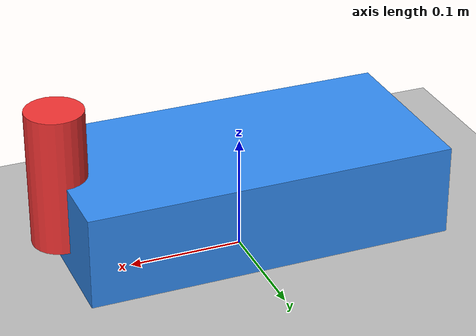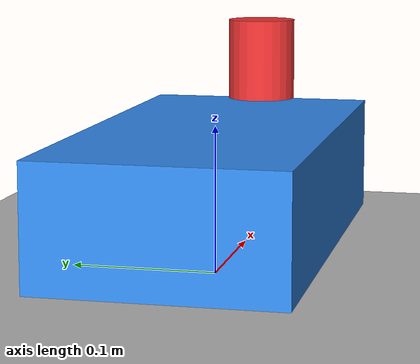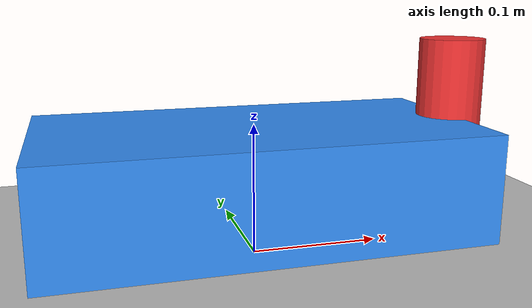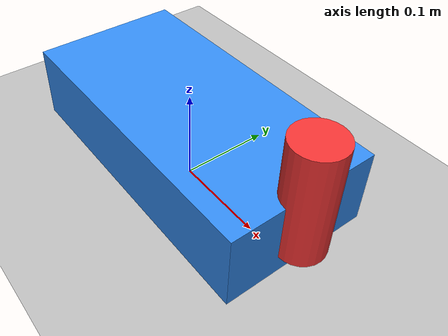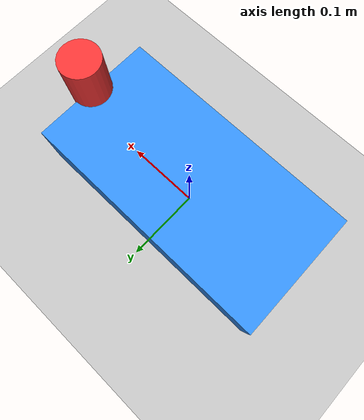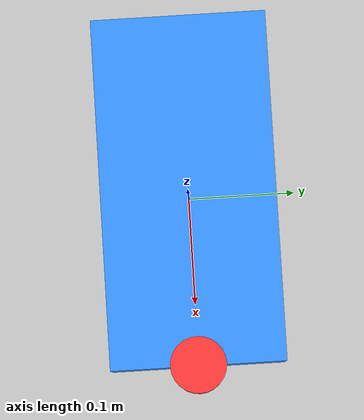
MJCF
<mujoco model="unicycle">
  <option timestep="0.02" integrator="implicit" gravity="0 0 0"/>

  <visual>
    <headlight diffuse="0.8 0.8 0.8" ambient="0.45 0.45 0.45" specular="0.1 0.1 0.1"/>
    <global azimuth="135" elevation="-25" offwidth="1280" offheight="960"/>
  </visual>

  <asset>
    <texture type="skybox" builtin="gradient" rgb1="0.60 0.75 0.92" rgb2="0.90 0.95 1.00"
             width="512" height="3072"/>
    <texture type="2d" name="groundtex" builtin="checker"
             rgb1="0.92 0.92 0.92" rgb2="0.55 0.55 0.55"
             markrgb="0.10 0.10 0.10" mark="edge" width="300" height="300"/>
    <material name="ground" texture="groundtex" texuniform="true"
              texrepeat="8 8" reflectance="0.05"/>
  </asset>

  <worldbody>
    <light name="top" pos="1 1 5" dir="0 0 -1" diffuse="0.7 0.7 0.7"
           specular="0.1 0.1 0.1" castshadow="false"/>
    <geom name="floor" type="plane" size="5 5 0.05" material="ground"/>
    <camera name="topdown" pos="1 1 3.5" xyaxes="1 0 0 0 1 0" fovy="65"/>
    <camera name="angled"  pos="3 -3 3" xyaxes="0.707 0.707 0 -0.408 0.408 0.816"/>

    <body name="base" pos="0 0 0.06">
      <joint name="x"     type="slide" axis="1 0 0" damping="0.5"/>
      <joint name="y"     type="slide" axis="0 1 0" damping="0.5"/>
      <joint name="theta" type="hinge" axis="0 0 1" damping="0.5"/>
      <geom type="box" size="0.16 0.08 0.04" rgba="0.20 0.55 0.95 1"/>
      <geom type="cylinder" size="0.025 0.06" pos="0.16 0 0.04"
            rgba="0.95 0.20 0.20 1"/>  <!-- nose marker so heading is visible -->
    </body>
  </worldbody>

  <actuator>
    <velocity name="vx"    joint="x"     kv="20" ctrlrange="-2 2"/>
    <velocity name="vy"    joint="y"     kv="20" ctrlrange="-2 2"/>
    <velocity name="omega" joint="theta" kv="20" ctrlrange="-3 3"/>
  </actuator>
</mujoco>
